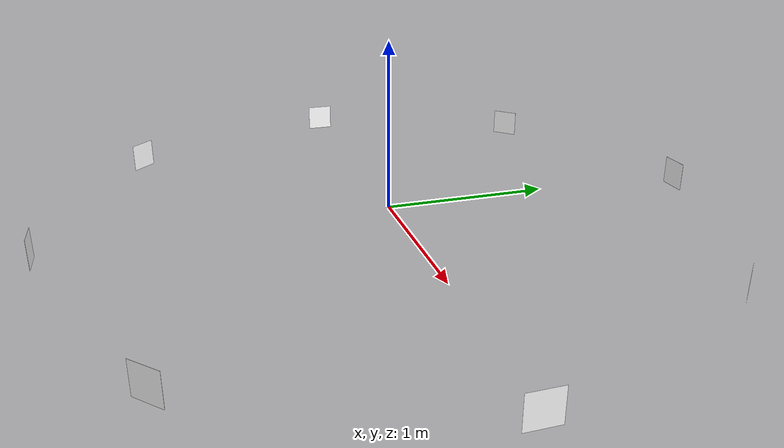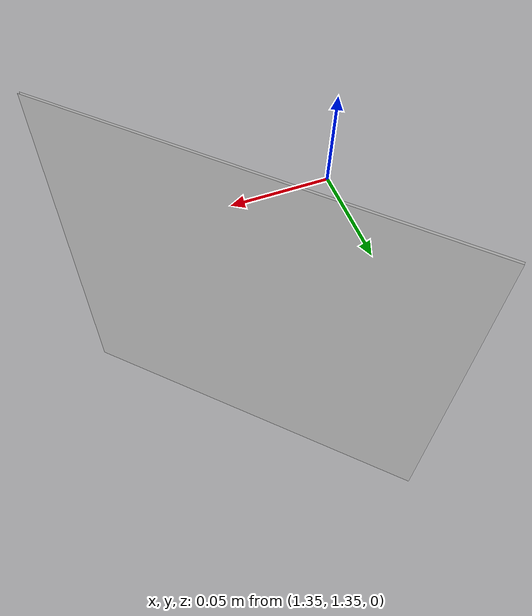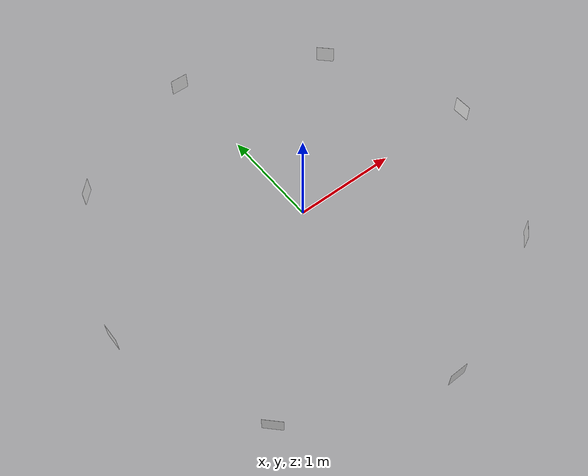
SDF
<?xml version="1.0"?>

<sdf version="1.6">
  <world name="default">

    <include>
      <uri>model://sun</uri>
    </include>

    <model name="marker_00">
      <include>
        <static>true</static>
        <uri>model://aruco_6x6_marker_00</uri>
      </include>
      <pose>2.0 0.0 0.0 0.0 -1.5707963267948966 0.0</pose>
    </model>
    <model name="marker_01">
      <include>
        <static>true</static>
        <uri>model://aruco_6x6_marker_01</uri>
      </include>
      <pose>1.4142135623730951 1.414213562373095 0.0 0.0 -1.5707963267948966 0.7853981633974482</pose>
    </model>
    <model name="marker_02">
      <include>
        <static>true</static>
        <uri>model://aruco_6x6_marker_02</uri>
      </include>
      <pose>1.2246467991473532e-16 2.0 0.0 0.0 -1.5707963267948966 1.5707963267948966</pose>
    </model>
    <model name="marker_03">
      <include>
        <static>true</static>
        <uri>model://aruco_6x6_marker_03</uri>
      </include>
      <pose>-1.414213562373095 1.4142135623730951 0.0 0.0 -1.5707963267948966 2.356194490192345</pose>
    </model>
    <model name="marker_04">
      <include>
        <static>true</static>
        <uri>model://aruco_6x6_marker_04</uri>
      </include>
      <pose>-2.0 2.4492935982947064e-16 0.0 0.0 -1.5707963267948966 3.141592653589793</pose>
    </model>
    <model name="marker_05">
      <include>
        <static>true</static>
        <uri>model://aruco_6x6_marker_05</uri>
      </include>
      <pose>-1.4142135623730954 -1.414213562373095 0.0 1.006490332776774e-16 -1.5707963267948966 -2.3561944901923453</pose>
    </model>
    <model name="marker_06">
      <include>
        <static>true</static>
        <uri>model://aruco_6x6_marker_06</uri>
      </include>
      <pose>-3.6739403974420594e-16 -2.0 0.0 0.0 -1.5707963267948966 -1.5707963267948968</pose>
    </model>
    <model name="marker_07">
      <include>
        <static>true</static>
        <uri>model://aruco_6x6_marker_07</uri>
      </include>
      <pose>1.4142135623730947 -1.4142135623730954 0.0 0.0 -1.5707963267948966 -0.7853981633974486</pose>
    </model>
  </world>
</sdf>

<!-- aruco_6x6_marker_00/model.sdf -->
<sdf version='1.5'>
  <model name='aruco_6x6_marker_00'>

    <link name='marker'>
      <pose frame=''>0 0 0 0 0 0</pose>
      <visual name='visual'>
        <geometry>
          <box>
            <size>0.1778 0.1778 1e-5</size>
          </box>
        </geometry>
        <material>
          <script>
            <uri>model://aruco_6x6_marker_00/materials/scripts</uri>
            <uri>model://aruco_6x6_marker_00/materials/textures</uri>
            <name>visual_aruco_6x6_marker_00/Marker</name>
          </script>
          <ambient>1 1 1 1</ambient>
          <diffuse>1 1 1 1</diffuse>
          <specular>0 0 0 1</specular>
          <emissive>1 1 1 0</emissive>
          <shader type='vertex'>
            <normal_map>__default__</normal_map>
          </shader>
        </material>
        <pose frame=''>0 0 0 0 0 0</pose>
        <cast_shadows>1</cast_shadows>
        <transparency>0</transparency>
      </visual>
      <collision name='collision'>
        <laser_retro>0</laser_retro>
        <max_contacts>10</max_contacts>
        <pose frame=''>0 0 0 0 0 0</pose>
        <geometry>
          <box>
            <size>0.1778 0.1778 1e-05</size>
          </box>
        </geometry>
      </collision>
    </link>

    <link name='marker_pad'>
      <pose frame='marker'>0 0 -1e-3 0 0 0</pose>
      <visual name='visual'>
        <geometry>
          <box>
            <size>0.1778 0.1778 1e-5</size>
          </box>
        </geometry>
        <material>
          <lighting>1</lighting>
          <script>
            <uri>file://media/materials/scripts/gazebo.material</uri>
            <name>Gazebo/White</name>
          </script>
          <ambient>0.3 0.3 0.3 1</ambient>
          <diffuse>0.7 0.7 0.7 1</diffuse>
          <specular>0.01 0.01 0.01 1</specular>
          <emissive>1 1 1 0</emissive>
          <shader type='vertex'>
            <normal_map>__default__</normal_map>
          </shader>
        </material>
        <cast_shadows>1</cast_shadows>
        <transparency>0</transparency>
      </visual>
      <collision name='collision'>
        <laser_retro>0</laser_retro>
        <max_contacts>10</max_contacts>
        <pose frame=''>0 0 0 0 0 0</pose>
        <geometry>
          <box>
            <size>0.1778 0.1778 1e-5</size>
          </box>
        </geometry>
      </collision>
    </link>

    <joint name='marker_JOINT_marker_pad' type='revolute'>
      <parent>marker</parent>
      <child>marker_pad</child>
      <pose frame=''>0 0 0 0 0 0</pose>
      <axis>
        <xyz>0 0 1</xyz>
        <limit>
          <upper>0</upper>
          <lower>0</lower>
        </limit>
      </axis>
    </joint>

    <static>1</static>
    <allow_auto_disable>1</allow_auto_disable>

  </model>
</sdf>

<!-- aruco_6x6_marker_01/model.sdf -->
<sdf version='1.5'>
  <model name='aruco_6x6_marker_01'>

    <link name='marker'>
      <pose frame=''>0 0 0 0 0 0</pose>
      <visual name='visual'>
        <geometry>
          <box>
            <size>0.1778 0.1778 1e-5</size>
          </box>
        </geometry>
        <material>
          <script>
            <uri>model://aruco_6x6_marker_01/materials/scripts</uri>
            <uri>model://aruco_6x6_marker_01/materials/textures</uri>
            <name>visual_aruco_6x6_marker_01/Marker</name>
          </script>
          <ambient>1 1 1 1</ambient>
          <diffuse>1 1 1 1</diffuse>
          <specular>0 0 0 1</specular>
          <emissive>1 1 1 0</emissive>
          <shader type='vertex'>
            <normal_map>__default__</normal_map>
          </shader>
        </material>
        <pose frame=''>0 0 0 0 0 0</pose>
        <cast_shadows>1</cast_shadows>
        <transparency>0</transparency>
      </visual>
      <collision name='collision'>
        <laser_retro>0</laser_retro>
        <max_contacts>10</max_contacts>
        <pose frame=''>0 0 0 0 0 0</pose>
        <geometry>
          <box>
            <size>0.1778 0.1778 1e-05</size>
          </box>
        </geometry>
      </collision>
    </link>

    <link name='marker_pad'>
      <pose frame='marker'>0 0 -1e-3 0 0 0</pose>
      <visual name='visual'>
        <geometry>
          <box>
            <size>0.1778 0.1778 1e-5</size>
          </box>
        </geometry>
        <material>
          <lighting>1</lighting>
          <script>
            <uri>file://media/materials/scripts/gazebo.material</uri>
            <name>Gazebo/White</name>
          </script>
          <ambient>0.3 0.3 0.3 1</ambient>
          <diffuse>0.7 0.7 0.7 1</diffuse>
          <specular>0.01 0.01 0.01 1</specular>
          <emissive>1 1 1 0</emissive>
          <shader type='vertex'>
            <normal_map>__default__</normal_map>
          </shader>
        </material>
        <cast_shadows>1</cast_shadows>
        <transparency>0</transparency>
      </visual>
      <collision name='collision'>
        <laser_retro>0</laser_retro>
        <max_contacts>10</max_contacts>
        <pose frame=''>0 0 0 0 0 0</pose>
        <geometry>
          <box>
            <size>0.1778 0.1778 1e-5</size>
          </box>
        </geometry>
      </collision>
    </link>

    <joint name='marker_JOINT_marker_pad' type='revolute'>
      <parent>marker</parent>
      <child>marker_pad</child>
      <pose frame=''>0 0 0 0 0 0</pose>
      <axis>
        <xyz>0 0 1</xyz>
        <limit>
          <upper>0</upper>
          <lower>0</lower>
        </limit>
      </axis>
    </joint>

    <static>1</static>
    <allow_auto_disable>1</allow_auto_disable>

  </model>
</sdf>

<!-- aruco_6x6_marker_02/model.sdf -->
<sdf version='1.5'>
  <model name='aruco_6x6_marker_02'>

    <link name='marker'>
      <pose frame=''>0 0 0 0 0 0</pose>
      <visual name='visual'>
        <geometry>
          <box>
            <size>0.1778 0.1778 1e-5</size>
          </box>
        </geometry>
        <material>
          <script>
            <uri>model://aruco_6x6_marker_02/materials/scripts</uri>
            <uri>model://aruco_6x6_marker_02/materials/textures</uri>
            <name>visual_aruco_6x6_marker_02/Marker</name>
          </script>
          <ambient>1 1 1 1</ambient>
          <diffuse>1 1 1 1</diffuse>
          <specular>0 0 0 1</specular>
          <emissive>1 1 1 0</emissive>
          <shader type='vertex'>
            <normal_map>__default__</normal_map>
          </shader>
        </material>
        <pose frame=''>0 0 0 0 0 0</pose>
        <cast_shadows>1</cast_shadows>
        <transparency>0</transparency>
      </visual>
      <collision name='collision'>
        <laser_retro>0</laser_retro>
        <max_contacts>10</max_contacts>
        <pose frame=''>0 0 0 0 0 0</pose>
        <geometry>
          <box>
            <size>0.1778 0.1778 1e-05</size>
          </box>
        </geometry>
      </collision>
    </link>

    <link name='marker_pad'>
      <pose frame='marker'>0 0 -1e-3 0 0 0</pose>
      <visual name='visual'>
        <geometry>
          <box>
            <size>0.1778 0.1778 1e-5</size>
          </box>
        </geometry>
        <material>
          <lighting>1</lighting>
          <script>
            <uri>file://media/materials/scripts/gazebo.material</uri>
            <name>Gazebo/White</name>
          </script>
          <ambient>0.3 0.3 0.3 1</ambient>
          <diffuse>0.7 0.7 0.7 1</diffuse>
          <specular>0.01 0.01 0.01 1</specular>
          <emissive>1 1 1 0</emissive>
          <shader type='vertex'>
            <normal_map>__default__</normal_map>
          </shader>
        </material>
        <cast_shadows>1</cast_shadows>
        <transparency>0</transparency>
      </visual>
      <collision name='collision'>
        <laser_retro>0</laser_retro>
        <max_contacts>10</max_contacts>
        <pose frame=''>0 0 0 0 0 0</pose>
        <geometry>
          <box>
            <size>0.1778 0.1778 1e-5</size>
          </box>
        </geometry>
      </collision>
    </link>

    <joint name='marker_JOINT_marker_pad' type='revolute'>
      <parent>marker</parent>
      <child>marker_pad</child>
      <pose frame=''>0 0 0 0 0 0</pose>
      <axis>
        <xyz>0 0 1</xyz>
        <limit>
          <upper>0</upper>
          <lower>0</lower>
        </limit>
      </axis>
    </joint>

    <static>1</static>
    <allow_auto_disable>1</allow_auto_disable>

  </model>
</sdf>

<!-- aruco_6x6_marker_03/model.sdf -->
<sdf version='1.5'>
  <model name='aruco_6x6_marker_03'>

    <link name='marker'>
      <pose frame=''>0 0 0 0 0 0</pose>
      <visual name='visual'>
        <geometry>
          <box>
            <size>0.1778 0.1778 1e-5</size>
          </box>
        </geometry>
        <material>
          <script>
            <uri>model://aruco_6x6_marker_03/materials/scripts</uri>
            <uri>model://aruco_6x6_marker_03/materials/textures</uri>
            <name>visual_aruco_6x6_marker_03/Marker</name>
          </script>
          <ambient>1 1 1 1</ambient>
          <diffuse>1 1 1 1</diffuse>
          <specular>0 0 0 1</specular>
          <emissive>1 1 1 0</emissive>
          <shader type='vertex'>
            <normal_map>__default__</normal_map>
          </shader>
        </material>
        <pose frame=''>0 0 0 0 0 0</pose>
        <cast_shadows>1</cast_shadows>
        <transparency>0</transparency>
      </visual>
      <collision name='collision'>
        <laser_retro>0</laser_retro>
        <max_contacts>10</max_contacts>
        <pose frame=''>0 0 0 0 0 0</pose>
        <geometry>
          <box>
            <size>0.1778 0.1778 1e-05</size>
          </box>
        </geometry>
      </collision>
    </link>

    <link name='marker_pad'>
      <pose frame='marker'>0 0 -1e-3 0 0 0</pose>
      <visual name='visual'>
        <geometry>
          <box>
            <size>0.1778 0.1778 1e-5</size>
          </box>
        </geometry>
        <material>
          <lighting>1</lighting>
          <script>
            <uri>file://media/materials/scripts/gazebo.material</uri>
            <name>Gazebo/White</name>
          </script>
          <ambient>0.3 0.3 0.3 1</ambient>
          <diffuse>0.7 0.7 0.7 1</diffuse>
          <specular>0.01 0.01 0.01 1</specular>
          <emissive>1 1 1 0</emissive>
          <shader type='vertex'>
            <normal_map>__default__</normal_map>
          </shader>
        </material>
        <cast_shadows>1</cast_shadows>
        <transparency>0</transparency>
      </visual>
      <collision name='collision'>
        <laser_retro>0</laser_retro>
        <max_contacts>10</max_contacts>
        <pose frame=''>0 0 0 0 0 0</pose>
        <geometry>
          <box>
            <size>0.1778 0.1778 1e-5</size>
          </box>
        </geometry>
      </collision>
    </link>

    <joint name='marker_JOINT_marker_pad' type='revolute'>
      <parent>marker</parent>
      <child>marker_pad</child>
      <pose frame=''>0 0 0 0 0 0</pose>
      <axis>
        <xyz>0 0 1</xyz>
        <limit>
          <upper>0</upper>
          <lower>0</lower>
        </limit>
      </axis>
    </joint>

    <static>1</static>
    <allow_auto_disable>1</allow_auto_disable>

  </model>
</sdf>

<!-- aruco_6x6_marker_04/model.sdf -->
<sdf version='1.5'>
  <model name='aruco_6x6_marker_04'>

    <link name='marker'>
      <pose frame=''>0 0 0 0 0 0</pose>
      <visual name='visual'>
        <geometry>
          <box>
            <size>0.1778 0.1778 1e-5</size>
          </box>
        </geometry>
        <material>
          <script>
            <uri>model://aruco_6x6_marker_04/materials/scripts</uri>
            <uri>model://aruco_6x6_marker_04/materials/textures</uri>
            <name>visual_aruco_6x6_marker_04/Marker</name>
          </script>
          <ambient>1 1 1 1</ambient>
          <diffuse>1 1 1 1</diffuse>
          <specular>0 0 0 1</specular>
          <emissive>1 1 1 0</emissive>
          <shader type='vertex'>
            <normal_map>__default__</normal_map>
          </shader>
        </material>
        <pose frame=''>0 0 0 0 0 0</pose>
        <cast_shadows>1</cast_shadows>
        <transparency>0</transparency>
      </visual>
      <collision name='collision'>
        <laser_retro>0</laser_retro>
        <max_contacts>10</max_contacts>
        <pose frame=''>0 0 0 0 0 0</pose>
        <geometry>
          <box>
            <size>0.1778 0.1778 1e-05</size>
          </box>
        </geometry>
      </collision>
    </link>

    <link name='marker_pad'>
      <pose frame='marker'>0 0 -1e-3 0 0 0</pose>
      <visual name='visual'>
        <geometry>
          <box>
            <size>0.1778 0.1778 1e-5</size>
          </box>
        </geometry>
        <material>
          <lighting>1</lighting>
          <script>
            <uri>file://media/materials/scripts/gazebo.material</uri>
            <name>Gazebo/White</name>
          </script>
          <ambient>0.3 0.3 0.3 1</ambient>
          <diffuse>0.7 0.7 0.7 1</diffuse>
          <specular>0.01 0.01 0.01 1</specular>
          <emissive>1 1 1 0</emissive>
          <shader type='vertex'>
            <normal_map>__default__</normal_map>
          </shader>
        </material>
        <cast_shadows>1</cast_shadows>
        <transparency>0</transparency>
      </visual>
      <collision name='collision'>
        <laser_retro>0</laser_retro>
        <max_contacts>10</max_contacts>
        <pose frame=''>0 0 0 0 0 0</pose>
        <geometry>
          <box>
            <size>0.1778 0.1778 1e-5</size>
          </box>
        </geometry>
      </collision>
    </link>

    <joint name='marker_JOINT_marker_pad' type='revolute'>
      <parent>marker</parent>
      <child>marker_pad</child>
      <pose frame=''>0 0 0 0 0 0</pose>
      <axis>
        <xyz>0 0 1</xyz>
        <limit>
          <upper>0</upper>
          <lower>0</lower>
        </limit>
      </axis>
    </joint>

    <static>1</static>
    <allow_auto_disable>1</allow_auto_disable>

  </model>
</sdf>

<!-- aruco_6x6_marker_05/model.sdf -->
<sdf version='1.5'>
  <model name='aruco_6x6_marker_05'>

    <link name='marker'>
      <pose frame=''>0 0 0 0 0 0</pose>
      <visual name='visual'>
        <geometry>
          <box>
            <size>0.1778 0.1778 1e-5</size>
          </box>
        </geometry>
        <material>
          <script>
            <uri>model://aruco_6x6_marker_05/materials/scripts</uri>
            <uri>model://aruco_6x6_marker_05/materials/textures</uri>
            <name>visual_aruco_6x6_marker_05/Marker</name>
          </script>
          <ambient>1 1 1 1</ambient>
          <diffuse>1 1 1 1</diffuse>
          <specular>0 0 0 1</specular>
          <emissive>1 1 1 0</emissive>
          <shader type='vertex'>
            <normal_map>__default__</normal_map>
          </shader>
        </material>
        <pose frame=''>0 0 0 0 0 0</pose>
        <cast_shadows>1</cast_shadows>
        <transparency>0</transparency>
      </visual>
      <collision name='collision'>
        <laser_retro>0</laser_retro>
        <max_contacts>10</max_contacts>
        <pose frame=''>0 0 0 0 0 0</pose>
        <geometry>
          <box>
            <size>0.1778 0.1778 1e-05</size>
          </box>
        </geometry>
      </collision>
    </link>

    <link name='marker_pad'>
      <pose frame='marker'>0 0 -1e-3 0 0 0</pose>
      <visual name='visual'>
        <geometry>
          <box>
            <size>0.1778 0.1778 1e-5</size>
          </box>
        </geometry>
        <material>
          <lighting>1</lighting>
          <script>
            <uri>file://media/materials/scripts/gazebo.material</uri>
            <name>Gazebo/White</name>
          </script>
          <ambient>0.3 0.3 0.3 1</ambient>
          <diffuse>0.7 0.7 0.7 1</diffuse>
          <specular>0.01 0.01 0.01 1</specular>
          <emissive>1 1 1 0</emissive>
          <shader type='vertex'>
            <normal_map>__default__</normal_map>
          </shader>
        </material>
        <cast_shadows>1</cast_shadows>
        <transparency>0</transparency>
      </visual>
      <collision name='collision'>
        <laser_retro>0</laser_retro>
        <max_contacts>10</max_contacts>
        <pose frame=''>0 0 0 0 0 0</pose>
        <geometry>
          <box>
            <size>0.1778 0.1778 1e-5</size>
          </box>
        </geometry>
      </collision>
    </link>

    <joint name='marker_JOINT_marker_pad' type='revolute'>
      <parent>marker</parent>
      <child>marker_pad</child>
      <pose frame=''>0 0 0 0 0 0</pose>
      <axis>
        <xyz>0 0 1</xyz>
        <limit>
          <upper>0</upper>
          <lower>0</lower>
        </limit>
      </axis>
    </joint>

    <static>1</static>
    <allow_auto_disable>1</allow_auto_disable>

  </model>
</sdf>

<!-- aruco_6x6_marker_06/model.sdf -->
<sdf version='1.5'>
  <model name='aruco_6x6_marker_06'>

    <link name='marker'>
      <pose frame=''>0 0 0 0 0 0</pose>
      <visual name='visual'>
        <geometry>
          <box>
            <size>0.1778 0.1778 1e-5</size>
          </box>
        </geometry>
        <material>
          <script>
            <uri>model://aruco_6x6_marker_06/materials/scripts</uri>
            <uri>model://aruco_6x6_marker_06/materials/textures</uri>
            <name>visual_aruco_6x6_marker_06/Marker</name>
          </script>
          <ambient>1 1 1 1</ambient>
          <diffuse>1 1 1 1</diffuse>
          <specular>0 0 0 1</specular>
          <emissive>1 1 1 0</emissive>
          <shader type='vertex'>
            <normal_map>__default__</normal_map>
          </shader>
        </material>
        <pose frame=''>0 0 0 0 0 0</pose>
        <cast_shadows>1</cast_shadows>
        <transparency>0</transparency>
      </visual>
      <collision name='collision'>
        <laser_retro>0</laser_retro>
        <max_contacts>10</max_contacts>
        <pose frame=''>0 0 0 0 0 0</pose>
        <geometry>
          <box>
            <size>0.1778 0.1778 1e-05</size>
          </box>
        </geometry>
      </collision>
    </link>

    <link name='marker_pad'>
      <pose frame='marker'>0 0 -1e-3 0 0 0</pose>
      <visual name='visual'>
        <geometry>
          <box>
            <size>0.1778 0.1778 1e-5</size>
          </box>
        </geometry>
        <material>
          <lighting>1</lighting>
          <script>
            <uri>file://media/materials/scripts/gazebo.material</uri>
            <name>Gazebo/White</name>
          </script>
          <ambient>0.3 0.3 0.3 1</ambient>
          <diffuse>0.7 0.7 0.7 1</diffuse>
          <specular>0.01 0.01 0.01 1</specular>
          <emissive>1 1 1 0</emissive>
          <shader type='vertex'>
            <normal_map>__default__</normal_map>
          </shader>
        </material>
        <cast_shadows>1</cast_shadows>
        <transparency>0</transparency>
      </visual>
      <collision name='collision'>
        <laser_retro>0</laser_retro>
        <max_contacts>10</max_contacts>
        <pose frame=''>0 0 0 0 0 0</pose>
        <geometry>
          <box>
            <size>0.1778 0.1778 1e-5</size>
          </box>
        </geometry>
      </collision>
    </link>

    <joint name='marker_JOINT_marker_pad' type='revolute'>
      <parent>marker</parent>
      <child>marker_pad</child>
      <pose frame=''>0 0 0 0 0 0</pose>
      <axis>
        <xyz>0 0 1</xyz>
        <limit>
          <upper>0</upper>
          <lower>0</lower>
        </limit>
      </axis>
    </joint>

    <static>1</static>
    <allow_auto_disable>1</allow_auto_disable>

  </model>
</sdf>

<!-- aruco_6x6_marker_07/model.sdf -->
<sdf version='1.5'>
  <model name='aruco_6x6_marker_07'>

    <link name='marker'>
      <pose frame=''>0 0 0 0 0 0</pose>
      <visual name='visual'>
        <geometry>
          <box>
            <size>0.1778 0.1778 1e-5</size>
          </box>
        </geometry>
        <material>
          <script>
            <uri>model://aruco_6x6_marker_07/materials/scripts</uri>
            <uri>model://aruco_6x6_marker_07/materials/textures</uri>
            <name>visual_aruco_6x6_marker_07/Marker</name>
          </script>
          <ambient>1 1 1 1</ambient>
          <diffuse>1 1 1 1</diffuse>
          <specular>0 0 0 1</specular>
          <emissive>1 1 1 0</emissive>
          <shader type='vertex'>
            <normal_map>__default__</normal_map>
          </shader>
        </material>
        <pose frame=''>0 0 0 0 0 0</pose>
        <cast_shadows>1</cast_shadows>
        <transparency>0</transparency>
      </visual>
      <collision name='collision'>
        <laser_retro>0</laser_retro>
        <max_contacts>10</max_contacts>
        <pose frame=''>0 0 0 0 0 0</pose>
        <geometry>
          <box>
            <size>0.1778 0.1778 1e-05</size>
          </box>
        </geometry>
      </collision>
    </link>

    <link name='marker_pad'>
      <pose frame='marker'>0 0 -1e-3 0 0 0</pose>
      <visual name='visual'>
        <geometry>
          <box>
            <size>0.1778 0.1778 1e-5</size>
          </box>
        </geometry>
        <material>
          <lighting>1</lighting>
          <script>
            <uri>file://media/materials/scripts/gazebo.material</uri>
            <name>Gazebo/White</name>
          </script>
          <ambient>0.3 0.3 0.3 1</ambient>
          <diffuse>0.7 0.7 0.7 1</diffuse>
          <specular>0.01 0.01 0.01 1</specular>
          <emissive>1 1 1 0</emissive>
          <shader type='vertex'>
            <normal_map>__default__</normal_map>
          </shader>
        </material>
        <cast_shadows>1</cast_shadows>
        <transparency>0</transparency>
      </visual>
      <collision name='collision'>
        <laser_retro>0</laser_retro>
        <max_contacts>10</max_contacts>
        <pose frame=''>0 0 0 0 0 0</pose>
        <geometry>
          <box>
            <size>0.1778 0.1778 1e-5</size>
          </box>
        </geometry>
      </collision>
    </link>

    <joint name='marker_JOINT_marker_pad' type='revolute'>
      <parent>marker</parent>
      <child>marker_pad</child>
      <pose frame=''>0 0 0 0 0 0</pose>
      <axis>
        <xyz>0 0 1</xyz>
        <limit>
          <upper>0</upper>
          <lower>0</lower>
        </limit>
      </axis>
    </joint>

    <static>1</static>
    <allow_auto_disable>1</allow_auto_disable>

  </model>
</sdf>
